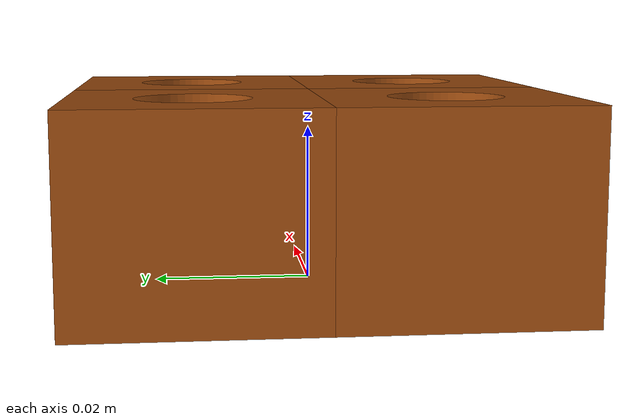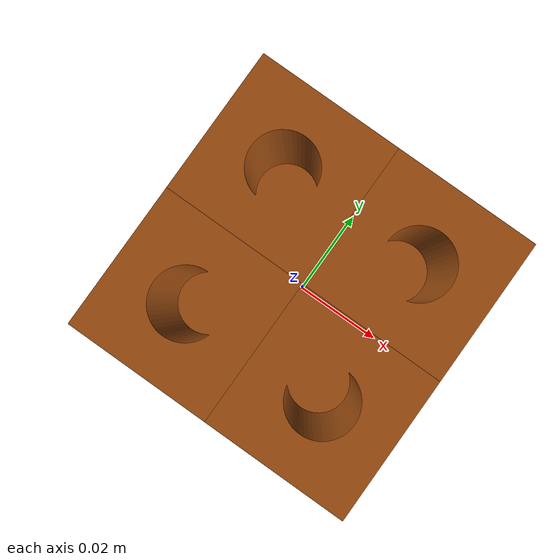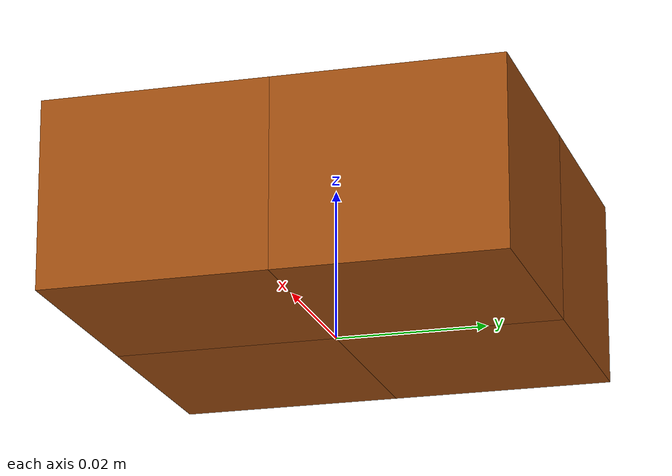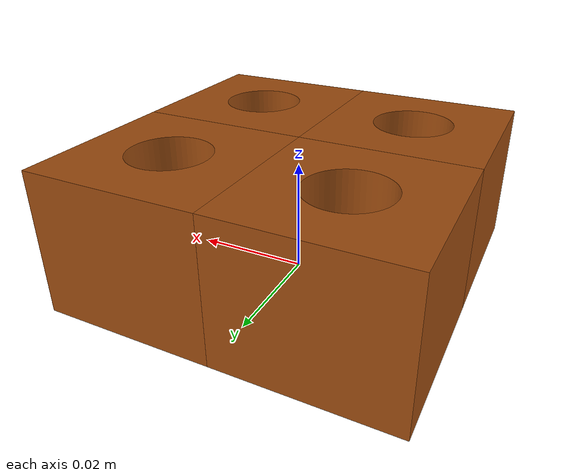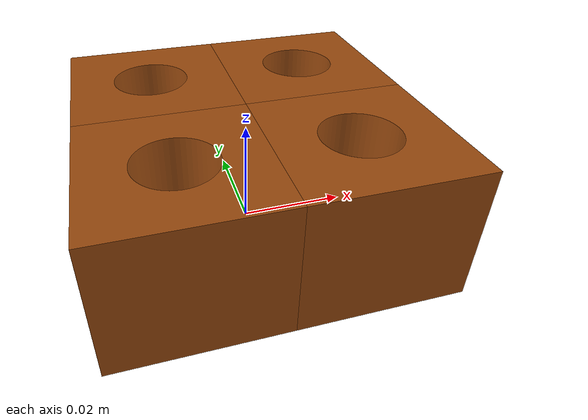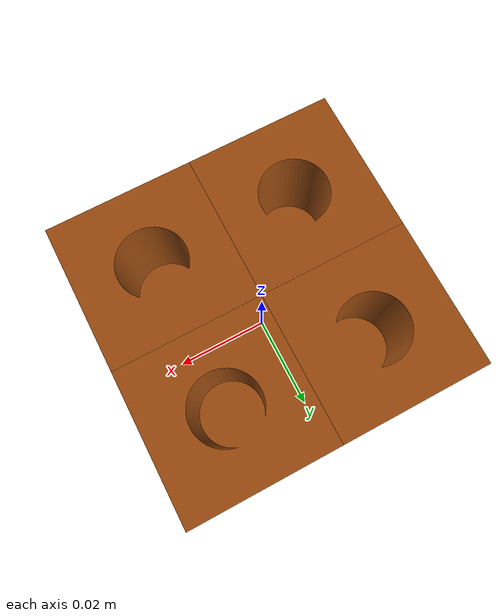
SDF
<?xml version="1.0"?>
<!--
  Socket: a 60 x 60 x 25 mm block with four blind holes for the plug's pins
  (mesh made by meshes/generate_socket_cell.py). Static. Origin at the
  bottom face centre.
-->
<sdf version="1.9">
  <model name="socket">
    <!-- Ground-truth segmentation label (see segmentation_camera in
         dual_arm_workcell_gazebo.urdf.xacro). Unique per object type. -->
    <plugin filename="gz-sim-label-system" name="gz::sim::systems::Label">
      <label>2</label>
    </plugin>
    <static>true</static>
    <link name="socket_link">
      <inertial>
        <pose>0 0 0.0125 0 0 0</pose>
        <mass>0.08</mass>
        <inertia>
          <ixx>2e-5</ixx>
          <iyy>2e-5</iyy>
          <izz>3e-5</izz>
          <ixy>0</ixy>
          <ixz>0</ixz>
          <iyz>0</iyz>
        </inertia>
      </inertial>

      <!-- 4 quarter-cells tiled at the (+-0.015, +-0.015) quadrant offsets -->
      <visual name="cell_pp_visual">
        <pose>0.015 0.015 0 0 0 0</pose>
        <geometry>
          <mesh><uri>package://so101_description/meshes/socket_cell_blind_hole.stl</uri></mesh>
        </geometry>
        <material>
          <ambient>0.62 0.30 0.06 1.0</ambient>
          <diffuse>0.62 0.30 0.06 1.0</diffuse>
          <specular>0.5 0.5 0.5 1.0</specular>
        </material>
      </visual>
      <collision name="cell_pp_collision">
        <pose>0.015 0.015 0 0 0 0</pose>
        <geometry>
          <mesh><uri>package://so101_description/meshes/socket_cell_blind_hole.stl</uri></mesh>
        </geometry>
      </collision>

      <visual name="cell_pn_visual">
        <pose>0.015 -0.015 0 0 0 0</pose>
        <geometry>
          <mesh><uri>package://so101_description/meshes/socket_cell_blind_hole.stl</uri></mesh>
        </geometry>
        <material>
          <ambient>0.62 0.30 0.06 1.0</ambient>
          <diffuse>0.62 0.30 0.06 1.0</diffuse>
          <specular>0.5 0.5 0.5 1.0</specular>
        </material>
      </visual>
      <collision name="cell_pn_collision">
        <pose>0.015 -0.015 0 0 0 0</pose>
        <geometry>
          <mesh><uri>package://so101_description/meshes/socket_cell_blind_hole.stl</uri></mesh>
        </geometry>
      </collision>

      <visual name="cell_np_visual">
        <pose>-0.015 0.015 0 0 0 0</pose>
        <geometry>
          <mesh><uri>package://so101_description/meshes/socket_cell_blind_hole.stl</uri></mesh>
        </geometry>
        <material>
          <ambient>0.62 0.30 0.06 1.0</ambient>
          <diffuse>0.62 0.30 0.06 1.0</diffuse>
          <specular>0.5 0.5 0.5 1.0</specular>
        </material>
      </visual>
      <collision name="cell_np_collision">
        <pose>-0.015 0.015 0 0 0 0</pose>
        <geometry>
          <mesh><uri>package://so101_description/meshes/socket_cell_blind_hole.stl</uri></mesh>
        </geometry>
      </collision>

      <visual name="cell_nn_visual">
        <pose>-0.015 -0.015 0 0 0 0</pose>
        <geometry>
          <mesh><uri>package://so101_description/meshes/socket_cell_blind_hole.stl</uri></mesh>
        </geometry>
        <material>
          <ambient>0.62 0.30 0.06 1.0</ambient>
          <diffuse>0.62 0.30 0.06 1.0</diffuse>
          <specular>0.5 0.5 0.5 1.0</specular>
        </material>
      </visual>
      <collision name="cell_nn_collision">
        <pose>-0.015 -0.015 0 0 0 0</pose>
        <geometry>
          <mesh><uri>package://so101_description/meshes/socket_cell_blind_hole.stl</uri></mesh>
        </geometry>
      </collision>
    </link>
  </model>
</sdf>
